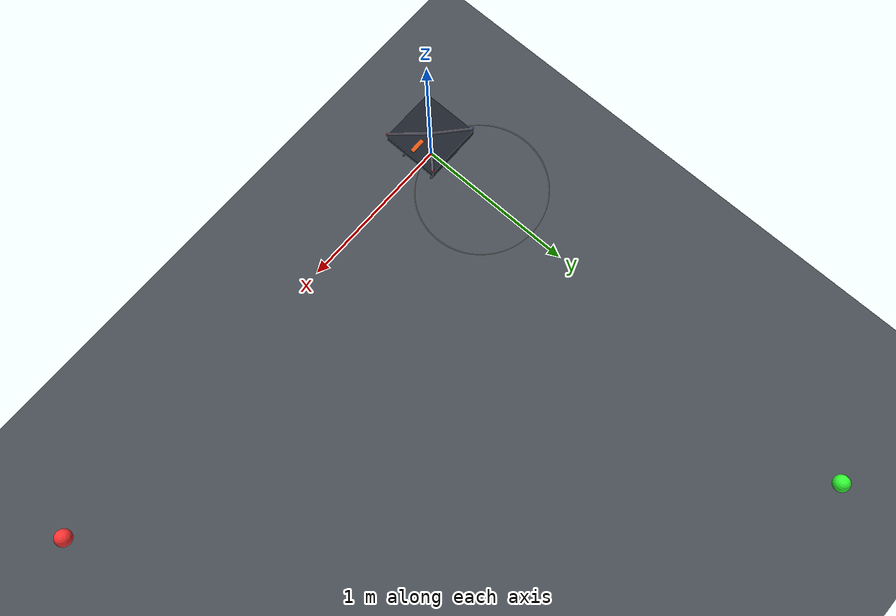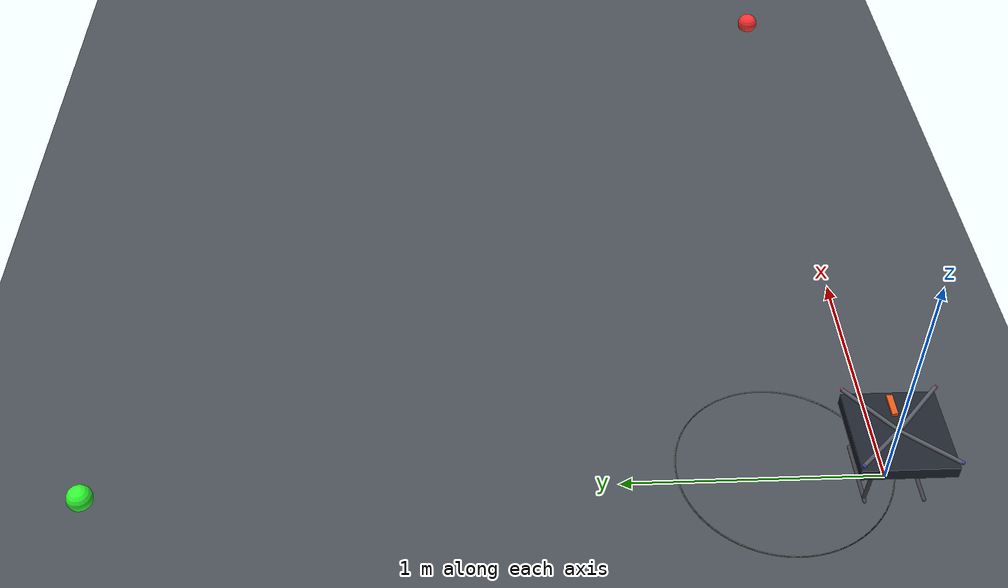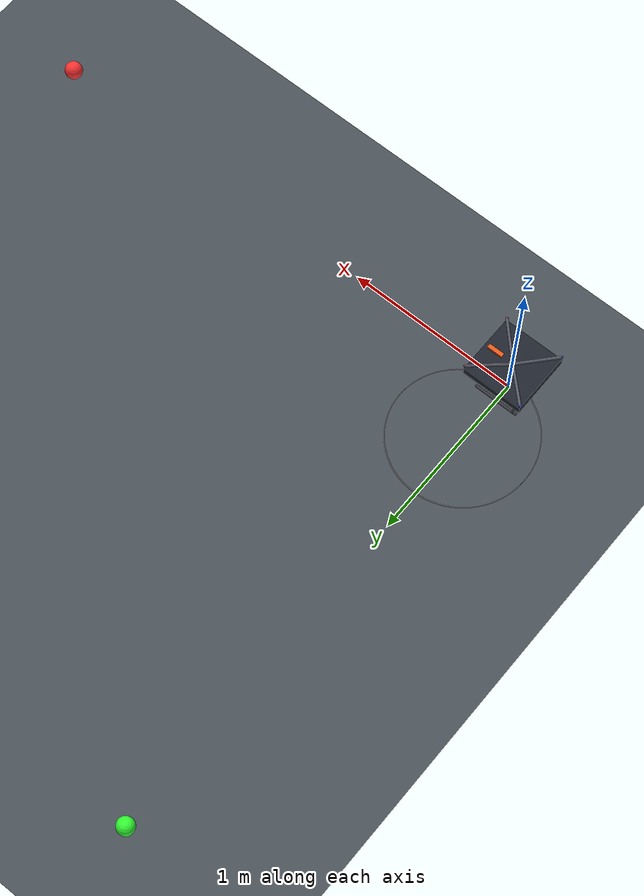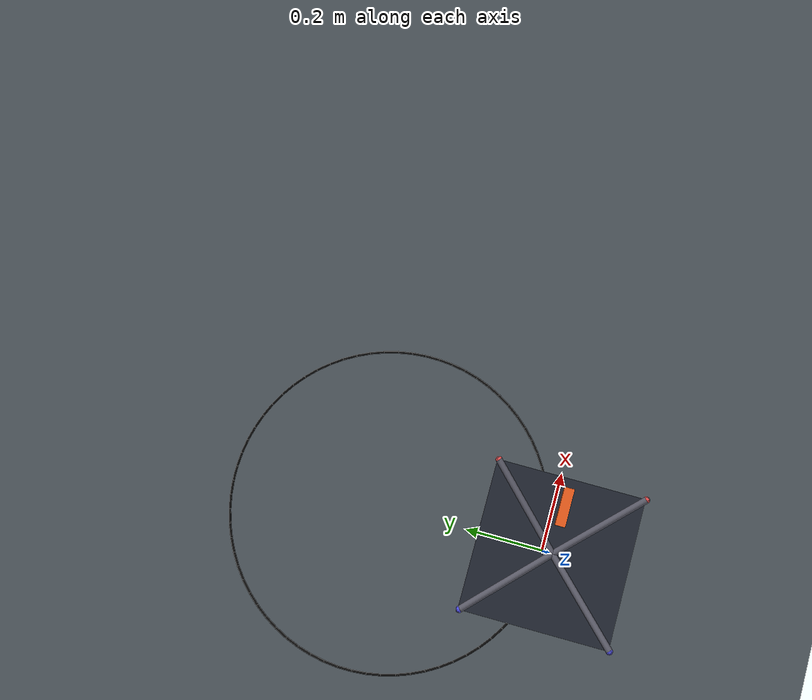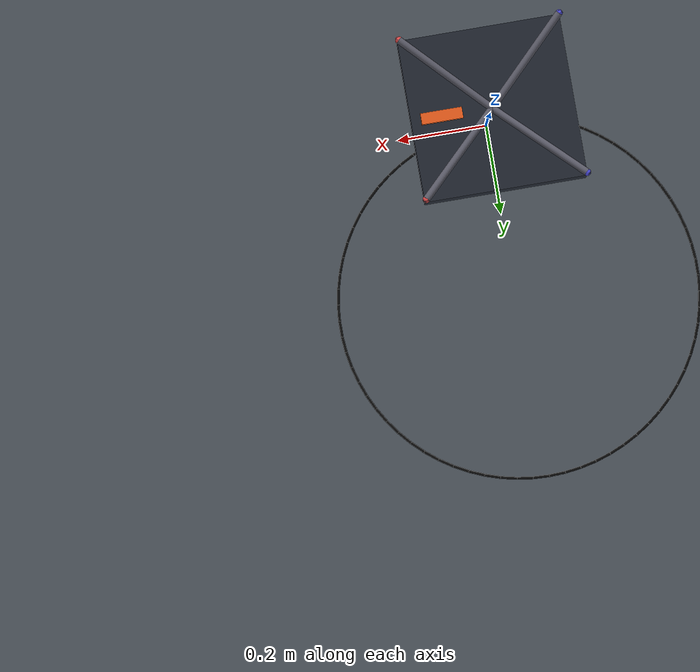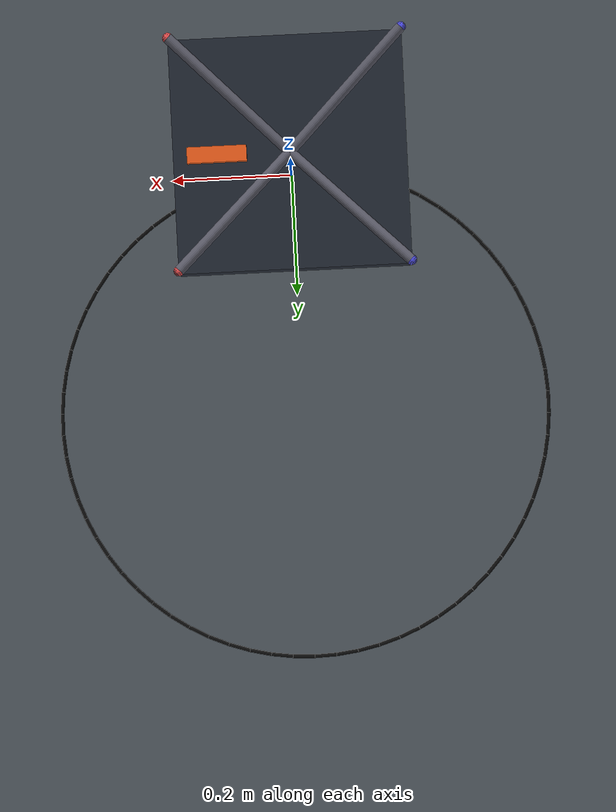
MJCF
<?xml version='1.0' encoding='utf-8'?>
<mujoco model="x500_tether_n70">
  <compiler angle="radian" coordinate="local" />
  <option timestep="0.001" gravity="0 0 -9.80665" integrator="RK4" density="1.2" viscosity="0" />
  <default>
    <geom contype="1" conaffinity="1" condim="3" friction="1.0 0.05 0.05" />
    <site type="sphere" size="0.008" rgba="1 0 0 1" />
  </default>
  <visual>
    <headlight ambient="0.4 0.4 0.4" />
    <global offwidth="1280" offheight="720" />
  </visual>
  <asset>
    <texture name="grid" type="2d" builtin="checker" rgb1="0.25 0.28 0.30" rgb2="0.32 0.35 0.38" width="512" height="512" />
    <material name="grid" texture="grid" texrepeat="12 12" reflectance="0.05" />
  </asset>
  <worldbody>
    <light pos="0 0 6" dir="0 0 -1" diffuse="0.8 0.8 0.8" />
    <geom name="floor" type="plane" size="60 60 0.1" material="grid" pos="0 0 0" />
    <site name="east_marker" pos="3 0 0.02" size="0.05" rgba="1 0.2 0.2 1" />
    <site name="north_marker" pos="0 3 0.02" size="0.05" rgba="0.2 1 0.2 1" />
    <body name="base_link" pos="0 0 0.24">
      <freejoint name="base_free" />
      <inertial pos="0 0 0.00186913" mass="2.0643076923076924" diaginertia="0.02383948 0.02394241 0.04399995" />
      <geom name="core" type="box" size="0.1767767 0.1767767 0.025" pos="0 0 0.007" density="0" rgba="0.12 0.14 0.18 1" />
      <geom name="nose" type="box" size="0.045 0.012 0.006" pos="0.11 0 0.04" density="0" contype="0" conaffinity="0" rgba="0.9 0.35 0.1 1" />
      <geom name="arm0" type="capsule" fromto="0 0 0.03 0.174 -0.174 0.06" size="0.008" density="0" rgba="0.35 0.35 0.4 1" />
      <geom name="arm1" type="capsule" fromto="0 0 0.03 -0.174 0.174 0.06" size="0.008" density="0" rgba="0.35 0.35 0.4 1" />
      <geom name="arm2" type="capsule" fromto="0 0 0.03 0.174 0.174 0.06" size="0.008" density="0" rgba="0.35 0.35 0.4 1" />
      <geom name="arm3" type="capsule" fromto="0 0 0.03 -0.174 -0.174 0.06" size="0.008" density="0" rgba="0.35 0.35 0.4 1" />
      <geom name="leg0" type="capsule" fromto="0.09 -0.09 -0.02 0.11 -0.11 -0.22" size="0.0075" density="0" rgba="0.25 0.25 0.28 1" />
      <geom name="leg1" type="capsule" fromto="-0.09 0.09 -0.02 -0.11 0.11 -0.22" size="0.0075" density="0" rgba="0.25 0.25 0.28 1" />
      <geom name="foot0" type="capsule" fromto="-0.125 -0.11 -0.22 0.125 -0.11 -0.22" size="0.0075" density="0" rgba="0.25 0.25 0.28 1" />
      <geom name="foot1" type="capsule" fromto="-0.125 0.11 -0.22 0.125 0.11 -0.22" size="0.0075" density="0" rgba="0.25 0.25 0.28 1" />
      <site name="imu" pos="0 0 0" quat="1 0 0 0" />
      <site name="rotor0" pos="0.174 -0.174 0.06" rgba="0.9 0.3 0.3 1" />
      <site name="rotor1" pos="-0.174 0.174 0.06" rgba="0.3 0.3 0.9 1" />
      <site name="rotor2" pos="0.174 0.174 0.06" rgba="0.9 0.3 0.3 1" />
      <site name="rotor3" pos="-0.174 -0.174 0.06" rgba="0.3 0.3 0.9 1" />
      <site name="tether_attach" pos="0 0 -0.12" size="0.012" rgba="0 0.8 0.2 1" />
    </body>
    <body name="tether_link_1" pos="0 0 0.01">
      <joint name="tether_joint_1" type="ball" damping="0.002" armature="1e-6" />
      <geom name="tether_geom_1" type="capsule" fromto="0 0 0 0.035643770455680408 0.0016007635769518598 0.0015714285714285708" size="0.0030000000000000001" mass="0.002142857142857143" contype="2" conaffinity="1" rgba="0.04 0.04 0.04 1" />
      <body name="tether_link_2" pos="0.035643770455680408 0.0016007635769518598 0.0015714285714285708">
        <joint name="tether_joint_2" type="ball" damping="0.002" armature="1e-6" />
        <geom name="tether_geom_2" type="capsule" fromto="0 0 0 0.035356787774168903 0.0047894023237677608 0.0015714285714285726" size="0.0030000000000000001" mass="0.002142857142857143" contype="2" conaffinity="1" rgba="0.04 0.04 0.04 1" />
        <body name="tether_link_3" pos="0.035356787774168903 0.0047894023237677608 0.0015714285714285726">
          <joint name="tether_joint_3" type="ball" damping="0.002" armature="1e-6" />
          <geom name="tether_geom_3" type="capsule" fromto="0 0 0 0.034785133026954324 0.007939479619195635 0.0015714285714285708" size="0.0030000000000000001" mass="0.002142857142857143" contype="2" conaffinity="1" rgba="0.04 0.04 0.04 1" />
          <body name="tether_link_4" pos="0.034785133026954324 0.007939479619195635 0.0015714285714285708">
            <joint name="tether_joint_4" type="ball" damping="0.002" armature="1e-6" />
            <geom name="tether_geom_4" type="capsule" fromto="0 0 0 0.033933408841933702 0.011025632893068103 0.0015714285714285708" size="0.0030000000000000001" mass="0.002142857142857143" contype="2" conaffinity="1" rgba="0.04 0.04 0.04 1" />
            <body name="tether_link_5" pos="0.033933408841933702 0.011025632893068103 0.0015714285714285708">
              <joint name="tether_joint_5" type="ball" damping="0.002" armature="1e-6" />
              <geom name="tether_geom_5" type="capsule" fromto="0 0 0 0.03280847280143917 0.014023014253852793 0.0015714285714285708" size="0.0030000000000000001" mass="0.002142857142857143" contype="2" conaffinity="1" rgba="0.04 0.04 0.04 1" />
              <body name="tether_link_6" pos="0.03280847280143917 0.014023014253852793 0.0015714285714285708">
                <joint name="tether_joint_6" type="ball" damping="0.002" armature="1e-6" />
                <geom name="tether_geom_6" type="capsule" fromto="0 0 0 0.031419382229016996 0.01690749054926434 0.0015714285714285708" size="0.0030000000000000001" mass="0.002142857142857143" contype="2" conaffinity="1" rgba="0.04 0.04 0.04 1" />
                <body name="tether_link_7" pos="0.031419382229016996 0.01690749054926434 0.0015714285714285708">
                  <joint name="tether_joint_7" type="ball" damping="0.002" armature="1e-6" />
                  <geom name="tether_geom_7" type="capsule" fromto="0 0 0 0.02977732126518437 0.019655837672216597 0.0015714285714285708" size="0.0030000000000000001" mass="0.002142857142857143" contype="2" conaffinity="1" rgba="0.04 0.04 0.04 1" />
                  <body name="tether_link_8" pos="0.02977732126518437 0.019655837672216597 0.0015714285714285708">
                    <joint name="tether_joint_8" type="ball" damping="0.002" armature="1e-6" />
                    <geom name="tether_geom_8" type="capsule" fromto="0 0 0 0.027895510819305858 0.022245927547677596 0.0015714285714285743" size="0.0030000000000000001" mass="0.002142857142857143" contype="2" conaffinity="1" rgba="0.04 0.04 0.04 1" />
                    <body name="tether_link_9" pos="0.027895510819305858 0.022245927547677596 0.0015714285714285743">
                      <joint name="tether_joint_9" type="ball" damping="0.002" armature="1e-6" />
                      <geom name="tether_geom_9" type="capsule" fromto="0 0 0 0.02578910212260499 0.024656906294918249 0.0015714285714285674" size="0.0030000000000000001" mass="0.002142857142857143" contype="2" conaffinity="1" rgba="0.04 0.04 0.04 1" />
                      <body name="tether_link_10" pos="0.02578910212260499 0.024656906294918249 0.0015714285714285674">
                        <joint name="tether_joint_10" type="ball" damping="0.002" armature="1e-6" />
                        <geom name="tether_geom_10" type="capsule" fromto="0 0 0 0.023475054739359513 0.026869362130698377 0.0015714285714285708" size="0.0030000000000000001" mass="0.002142857142857143" contype="2" conaffinity="1" rgba="0.04 0.04 0.04 1" />
                        <body name="tether_link_11" pos="0.023475054739359513 0.026869362130698377 0.0015714285714285708">
                          <joint name="tether_joint_11" type="ball" damping="0.002" armature="1e-6" />
                          <geom name="tether_geom_11" type="capsule" fromto="0 0 0 0.020972000018461223 0.028865481661531217 0.0015714285714285778" size="0.0030000000000000001" mass="0.002142857142857143" contype="2" conaffinity="1" rgba="0.04 0.04 0.04 1" />
                          <body name="tether_link_12" pos="0.020972000018461223 0.028865481661531217 0.0015714285714285778">
                            <joint name="tether_joint_12" type="ball" damping="0.002" armature="1e-6" />
                            <geom name="tether_geom_12" type="capsule" fromto="0 0 0 0.018300091084750725 0.030629193306653701 0.0015714285714285708" size="0.0030000000000000001" mass="0.002142857142857143" contype="2" conaffinity="1" rgba="0.04 0.04 0.04 1" />
                            <body name="tether_link_13" pos="0.018300091084750725 0.030629193306653701 0.0015714285714285708">
                              <joint name="tether_joint_13" type="ball" damping="0.002" armature="1e-6" />
                              <geom name="tether_geom_13" type="capsule" fromto="0 0 0 0.015480840577904997 0.03214629669694502 0.0015714285714285708" size="0.0030000000000000001" mass="0.002142857142857143" contype="2" conaffinity="1" rgba="0.04 0.04 0.04 1" />
                              <body name="tether_link_14" pos="0.015480840577904997 0.03214629669694502 0.0015714285714285708">
                                <joint name="tether_joint_14" type="ball" damping="0.002" armature="1e-6" />
                                <geom name="tether_geom_14" type="capsule" fromto="0 0 0 0.012536947445312918 0.033404577007948966 0.0015714285714285708" size="0.0030000000000000001" mass="0.002142857142857143" contype="2" conaffinity="1" rgba="0.04 0.04 0.04 1" />
                                <body name="tether_link_15" pos="0.012536947445312918 0.033404577007948966 0.0015714285714285708">
                                  <joint name="tether_joint_15" type="ball" damping="0.002" armature="1e-6" />
                                  <geom name="tether_geom_15" type="capsule" fromto="0 0 0 0.0094921141834969358 0.034393903306458085 0.0015714285714285708" size="0.0030000000000000001" mass="0.002142857142857143" contype="2" conaffinity="1" rgba="0.04 0.04 0.04 1" />
                                  <body name="tether_link_16" pos="0.0094921141834969358 0.034393903306458085 0.0015714285714285708">
                                    <joint name="tether_joint_16" type="ball" damping="0.002" armature="1e-6" />
                                    <geom name="tether_geom_16" type="capsule" fromto="0 0 0 0.006370855999548064 0.035106310118831252 0.0015714285714285708" size="0.0030000000000000001" mass="0.002142857142857143" contype="2" conaffinity="1" rgba="0.04 0.04 0.04 1" />
                                    <body name="tether_link_17" pos="0.006370855999548064 0.035106310118831252 0.0015714285714285708">
                                      <joint name="tether_joint_17" type="ball" damping="0.002" armature="1e-6" />
                                      <geom name="tether_geom_17" type="capsule" fromto="0 0 0 0.0031983034290935519 0.035536061564303612 0.0015714285714285708" size="0.0030000000000000001" mass="0.002142857142857143" contype="2" conaffinity="1" rgba="0.04 0.04 0.04 1" />
                                      <body name="tether_link_18" pos="0.0031983034290935519 0.035536061564303612 0.0015714285714285708">
                                        <joint name="tether_joint_18" type="ball" damping="0.002" armature="1e-6" />
                                        <geom name="tether_geom_18" type="capsule" fromto="0 0 0 5.5511151231257827e-17 0.035679697536926014 0.0015714285714285708" size="0.0030000000000000001" mass="0.002142857142857143" contype="2" conaffinity="1" rgba="0.04 0.04 0.04 1" />
                                        <body name="tether_link_19" pos="5.5511151231257827e-17 0.035679697536926014 0.0015714285714285708">
                                          <joint name="tether_joint_19" type="ball" damping="0.002" armature="1e-6" />
                                          <geom name="tether_geom_19" type="capsule" fromto="0 0 0 -0.0031983034290936074 0.035536061564303723 0.0015714285714285708" size="0.0030000000000000001" mass="0.002142857142857143" contype="2" conaffinity="1" rgba="0.04 0.04 0.04 1" />
                                          <body name="tether_link_20" pos="-0.0031983034290936074 0.035536061564303723 0.0015714285714285708">
                                            <joint name="tether_joint_20" type="ball" damping="0.002" armature="1e-6" />
                                            <geom name="tether_geom_20" type="capsule" fromto="0 0 0 -0.006370855999548064 0.035106310118831308 0.0015714285714285708" size="0.0030000000000000001" mass="0.002142857142857143" contype="2" conaffinity="1" rgba="0.04 0.04 0.04 1" />
                                            <body name="tether_link_21" pos="-0.006370855999548064 0.035106310118831308 0.0015714285714285708">
                                              <joint name="tether_joint_21" type="ball" damping="0.002" armature="1e-6" />
                                              <geom name="tether_geom_21" type="capsule" fromto="0 0 0 -0.0094921141834968803 0.034393903306458085 0.0015714285714285778" size="0.0030000000000000001" mass="0.002142857142857143" contype="2" conaffinity="1" rgba="0.04 0.04 0.04 1" />
                                              <body name="tether_link_22" pos="-0.0094921141834968803 0.034393903306458085 0.0015714285714285778">
                                                <joint name="tether_joint_22" type="ball" damping="0.002" armature="1e-6" />
                                                <geom name="tether_geom_22" type="capsule" fromto="0 0 0 -0.012536947445312974 0.033404577007948966 0.0015714285714285708" size="0.0030000000000000001" mass="0.002142857142857143" contype="2" conaffinity="1" rgba="0.04 0.04 0.04 1" />
                                                <body name="tether_link_23" pos="-0.012536947445312974 0.033404577007948966 0.0015714285714285708">
                                                  <joint name="tether_joint_23" type="ball" damping="0.002" armature="1e-6" />
                                                  <geom name="tether_geom_23" type="capsule" fromto="0 0 0 -0.015480840577904997 0.03214629669694502 0.0015714285714285708" size="0.0030000000000000001" mass="0.002142857142857143" contype="2" conaffinity="1" rgba="0.04 0.04 0.04 1" />
                                                  <body name="tether_link_24" pos="-0.015480840577904997 0.03214629669694502 0.0015714285714285708">
                                                    <joint name="tether_joint_24" type="ball" damping="0.002" armature="1e-6" />
                                                    <geom name="tether_geom_24" type="capsule" fromto="0 0 0 -0.018300091084750725 0.030629193306653812 0.0015714285714285708" size="0.0030000000000000001" mass="0.002142857142857143" contype="2" conaffinity="1" rgba="0.04 0.04 0.04 1" />
                                                    <body name="tether_link_25" pos="-0.018300091084750725 0.030629193306653812 0.0015714285714285708">
                                                      <joint name="tether_joint_25" type="ball" damping="0.002" armature="1e-6" />
                                                      <geom name="tether_geom_25" type="capsule" fromto="0 0 0 -0.020972000018461223 0.028865481661531023 0.0015714285714285708" size="0.0030000000000000001" mass="0.002142857142857143" contype="2" conaffinity="1" rgba="0.04 0.04 0.04 1" />
                                                      <body name="tether_link_26" pos="-0.020972000018461223 0.028865481661531023 0.0015714285714285708">
                                                        <joint name="tether_joint_26" type="ball" damping="0.002" armature="1e-6" />
                                                        <geom name="tether_geom_26" type="capsule" fromto="0 0 0 -0.023475054739359458 0.02686936213069846 0.0015714285714285708" size="0.0030000000000000001" mass="0.002142857142857143" contype="2" conaffinity="1" rgba="0.04 0.04 0.04 1" />
                                                        <body name="tether_link_27" pos="-0.023475054739359458 0.02686936213069846 0.0015714285714285708">
                                                          <joint name="tether_joint_27" type="ball" damping="0.002" armature="1e-6" />
                                                          <geom name="tether_geom_27" type="capsule" fromto="0 0 0 -0.025789102122604879 0.024656906294918124 0.0015714285714285708" size="0.0030000000000000001" mass="0.002142857142857143" contype="2" conaffinity="1" rgba="0.04 0.04 0.04 1" />
                                                          <body name="tether_link_28" pos="-0.025789102122604879 0.024656906294918124 0.0015714285714285708">
                                                            <joint name="tether_joint_28" type="ball" damping="0.002" armature="1e-6" />
                                                            <geom name="tether_geom_28" type="capsule" fromto="0 0 0 -0.027895510819305969 0.022245927547677735 0.0015714285714285708" size="0.0030000000000000001" mass="0.002142857142857143" contype="2" conaffinity="1" rgba="0.04 0.04 0.04 1" />
                                                            <body name="tether_link_29" pos="-0.027895510819305969 0.022245927547677735 0.0015714285714285708">
                                                              <joint name="tether_joint_29" type="ball" damping="0.002" armature="1e-6" />
                                                              <geom name="tether_geom_29" type="capsule" fromto="0 0 0 -0.029777321265184398 0.019655837672216681 0.0015714285714285708" size="0.0030000000000000001" mass="0.002142857142857143" contype="2" conaffinity="1" rgba="0.04 0.04 0.04 1" />
                                                              <body name="tether_link_30" pos="-0.029777321265184398 0.019655837672216681 0.0015714285714285708">
                                                                <joint name="tether_joint_30" type="ball" damping="0.002" armature="1e-6" />
                                                                <geom name="tether_geom_30" type="capsule" fromto="0 0 0 -0.031419382229016996 0.016907490549264215 0.0015714285714285708" size="0.0030000000000000001" mass="0.002142857142857143" contype="2" conaffinity="1" rgba="0.04 0.04 0.04 1" />
                                                                <body name="tether_link_31" pos="-0.031419382229016996 0.016907490549264215 0.0015714285714285708">
                                                                  <joint name="tether_joint_31" type="ball" damping="0.002" armature="1e-6" />
                                                                  <geom name="tether_geom_31" type="capsule" fromto="0 0 0 -0.032808472801439142 0.014023014253852883 0.0015714285714285708" size="0.0030000000000000001" mass="0.002142857142857143" contype="2" conaffinity="1" rgba="0.04 0.04 0.04 1" />
                                                                  <body name="tether_link_32" pos="-0.032808472801439142 0.014023014253852883 0.0015714285714285708">
                                                                    <joint name="tether_joint_32" type="ball" damping="0.002" armature="1e-6" />
                                                                    <geom name="tether_geom_32" type="capsule" fromto="0 0 0 -0.033933408841933715 0.011025632893068127 0.0015714285714285778" size="0.0030000000000000001" mass="0.002142857142857143" contype="2" conaffinity="1" rgba="0.04 0.04 0.04 1" />
                                                                    <body name="tether_link_33" pos="-0.033933408841933715 0.011025632893068127 0.0015714285714285778">
                                                                      <joint name="tether_joint_33" type="ball" damping="0.002" armature="1e-6" />
                                                                      <geom name="tether_geom_33" type="capsule" fromto="0 0 0 -0.034785133026954324 0.0079394796191956107 0.0015714285714285708" size="0.0030000000000000001" mass="0.002142857142857143" contype="2" conaffinity="1" rgba="0.04 0.04 0.04 1" />
                                                                      <body name="tether_link_34" pos="-0.034785133026954324 0.0079394796191956107 0.0015714285714285708">
                                                                        <joint name="tether_joint_34" type="ball" damping="0.002" armature="1e-6" />
                                                                        <geom name="tether_geom_34" type="capsule" fromto="0 0 0 -0.035356787774168896 0.0047894023237677885 0.0015714285714285708" size="0.0030000000000000001" mass="0.002142857142857143" contype="2" conaffinity="1" rgba="0.04 0.04 0.04 1" />
                                                                        <body name="tether_link_35" pos="-0.035356787774168896 0.0047894023237677885 0.0015714285714285708">
                                                                          <joint name="tether_joint_35" type="ball" damping="0.002" armature="1e-6" />
                                                                          <geom name="tether_geom_35" type="capsule" fromto="0 0 0 -0.035643770455680408 0.0016007635769518247 0.0015714285714285708" size="0.0030000000000000001" mass="0.002142857142857143" contype="2" conaffinity="1" rgba="0.04 0.04 0.04 1" />
                                                                          <body name="tether_link_36" pos="-0.035643770455680408 0.0016007635769518247 0.0015714285714285708">
                                                                            <joint name="tether_joint_36" type="ball" damping="0.002" armature="1e-6" />
                                                                            <geom name="tether_geom_36" type="capsule" fromto="0 0 0 -0.035643770455680228 -0.0016007635769518247 0.001571428571428557" size="0.0030000000000000001" mass="0.002142857142857143" contype="2" conaffinity="1" rgba="0.04 0.04 0.04 1" />
                                                                            <body name="tether_link_37" pos="-0.035643770455680228 -0.0016007635769518247 0.001571428571428557">
                                                                              <joint name="tether_joint_37" type="ball" damping="0.002" armature="1e-6" />
                                                                              <geom name="tether_geom_37" type="capsule" fromto="0 0 0 -0.035356787774169077 -0.0047894023237677885 0.0015714285714285847" size="0.0030000000000000001" mass="0.002142857142857143" contype="2" conaffinity="1" rgba="0.04 0.04 0.04 1" />
                                                                              <body name="tether_link_38" pos="-0.035356787774169077 -0.0047894023237677885 0.0015714285714285847">
                                                                                <joint name="tether_joint_38" type="ball" damping="0.002" armature="1e-6" />
                                                                                <geom name="tether_geom_38" type="capsule" fromto="0 0 0 -0.034785133026954157 -0.0079394796191954997 0.0015714285714285708" size="0.0030000000000000001" mass="0.002142857142857143" contype="2" conaffinity="1" rgba="0.04 0.04 0.04 1" />
                                                                                <body name="tether_link_39" pos="-0.034785133026954157 -0.0079394796191954997 0.0015714285714285708">
                                                                                  <joint name="tether_joint_39" type="ball" damping="0.002" armature="1e-6" />
                                                                                  <geom name="tether_geom_39" type="capsule" fromto="0 0 0 -0.033933408841933896 -0.011025632893068238 0.0015714285714285708" size="0.0030000000000000001" mass="0.002142857142857143" contype="2" conaffinity="1" rgba="0.04 0.04 0.04 1" />
                                                                                  <body name="tether_link_40" pos="-0.033933408841933896 -0.011025632893068238 0.0015714285714285708">
                                                                                    <joint name="tether_joint_40" type="ball" damping="0.002" armature="1e-6" />
                                                                                    <geom name="tether_geom_40" type="capsule" fromto="0 0 0 -0.032808472801439142 -0.014023014253852883 0.001571428571428557" size="0.0030000000000000001" mass="0.002142857142857143" contype="2" conaffinity="1" rgba="0.04 0.04 0.04 1" />
                                                                                    <body name="tether_link_41" pos="-0.032808472801439142 -0.014023014253852883 0.001571428571428557">
                                                                                      <joint name="tether_joint_41" type="ball" damping="0.002" armature="1e-6" />
                                                                                      <geom name="tether_geom_41" type="capsule" fromto="0 0 0 -0.031419382229016996 -0.016907490549264215 0.0015714285714285847" size="0.0030000000000000001" mass="0.002142857142857143" contype="2" conaffinity="1" rgba="0.04 0.04 0.04 1" />
                                                                                      <body name="tether_link_42" pos="-0.031419382229016996 -0.016907490549264215 0.0015714285714285847">
                                                                                        <joint name="tether_joint_42" type="ball" damping="0.002" armature="1e-6" />
                                                                                        <geom name="tether_geom_42" type="capsule" fromto="0 0 0 -0.02977732126518437 -0.019655837672216681 0.0015714285714285708" size="0.0030000000000000001" mass="0.002142857142857143" contype="2" conaffinity="1" rgba="0.04 0.04 0.04 1" />
                                                                                        <body name="tether_link_43" pos="-0.02977732126518437 -0.019655837672216681 0.0015714285714285708">
                                                                                          <joint name="tether_joint_43" type="ball" damping="0.002" armature="1e-6" />
                                                                                          <geom name="tether_geom_43" type="capsule" fromto="0 0 0 -0.027895510819305747 -0.022245927547677402 0.001571428571428557" size="0.0030000000000000001" mass="0.002142857142857143" contype="2" conaffinity="1" rgba="0.04 0.04 0.04 1" />
                                                                                          <body name="tether_link_44" pos="-0.027895510819305747 -0.022245927547677402 0.001571428571428557">
                                                                                            <joint name="tether_joint_44" type="ball" damping="0.002" armature="1e-6" />
                                                                                            <geom name="tether_geom_44" type="capsule" fromto="0 0 0 -0.025789102122605156 -0.024656906294918457 0.0015714285714285847" size="0.0030000000000000001" mass="0.002142857142857143" contype="2" conaffinity="1" rgba="0.04 0.04 0.04 1" />
                                                                                            <body name="tether_link_45" pos="-0.025789102122605156 -0.024656906294918457 0.0015714285714285847">
                                                                                              <joint name="tether_joint_45" type="ball" damping="0.002" armature="1e-6" />
                                                                                              <geom name="tether_geom_45" type="capsule" fromto="0 0 0 -0.023475054739359458 -0.026869362130698238 0.001571428571428557" size="0.0030000000000000001" mass="0.002142857142857143" contype="2" conaffinity="1" rgba="0.04 0.04 0.04 1" />
                                                                                              <body name="tether_link_46" pos="-0.023475054739359458 -0.026869362130698238 0.001571428571428557">
                                                                                                <joint name="tether_joint_46" type="ball" damping="0.002" armature="1e-6" />
                                                                                                <geom name="tether_geom_46" type="capsule" fromto="0 0 0 -0.020972000018461223 -0.028865481661531245 0.0015714285714285847" size="0.0030000000000000001" mass="0.002142857142857143" contype="2" conaffinity="1" rgba="0.04 0.04 0.04 1" />
                                                                                                <body name="tether_link_47" pos="-0.020972000018461223 -0.028865481661531245 0.0015714285714285847">
                                                                                                  <joint name="tether_joint_47" type="ball" damping="0.002" armature="1e-6" />
                                                                                                  <geom name="tether_geom_47" type="capsule" fromto="0 0 0 -0.018300091084750725 -0.030629193306653701 0.0015714285714285708" size="0.0030000000000000001" mass="0.002142857142857143" contype="2" conaffinity="1" rgba="0.04 0.04 0.04 1" />
                                                                                                  <body name="tether_link_48" pos="-0.018300091084750725 -0.030629193306653701 0.0015714285714285708">
                                                                                                    <joint name="tether_joint_48" type="ball" damping="0.002" armature="1e-6" />
                                                                                                    <geom name="tether_geom_48" type="capsule" fromto="0 0 0 -0.015480840577905053 -0.032146296696945131 0.0015714285714285708" size="0.0030000000000000001" mass="0.002142857142857143" contype="2" conaffinity="1" rgba="0.04 0.04 0.04 1" />
                                                                                                    <body name="tether_link_49" pos="-0.015480840577905053 -0.032146296696945131 0.0015714285714285708">
                                                                                                      <joint name="tether_joint_49" type="ball" damping="0.002" armature="1e-6" />
                                                                                                      <geom name="tether_geom_49" type="capsule" fromto="0 0 0 -0.012536947445312918 -0.033404577007948966 0.0015714285714285708" size="0.0030000000000000001" mass="0.002142857142857143" contype="2" conaffinity="1" rgba="0.04 0.04 0.04 1" />
                                                                                                      <body name="tether_link_50" pos="-0.012536947445312918 -0.033404577007948966 0.0015714285714285708">
                                                                                                        <joint name="tether_joint_50" type="ball" damping="0.002" armature="1e-6" />
                                                                                                        <geom name="tether_geom_50" type="capsule" fromto="0 0 0 -0.0094921141834969358 -0.034393903306457974 0.0015714285714285708" size="0.0030000000000000001" mass="0.002142857142857143" contype="2" conaffinity="1" rgba="0.04 0.04 0.04 1" />
                                                                                                        <body name="tether_link_51" pos="-0.0094921141834969358 -0.034393903306457974 0.0015714285714285708">
                                                                                                          <joint name="tether_joint_51" type="ball" damping="0.002" armature="1e-6" />
                                                                                                          <geom name="tether_geom_51" type="capsule" fromto="0 0 0 -0.006370855999548064 -0.035106310118831252 0.0015714285714285708" size="0.0030000000000000001" mass="0.002142857142857143" contype="2" conaffinity="1" rgba="0.04 0.04 0.04 1" />
                                                                                                          <body name="tether_link_52" pos="-0.006370855999548064 -0.035106310118831252 0.0015714285714285708">
                                                                                                            <joint name="tether_joint_52" type="ball" damping="0.002" armature="1e-6" />
                                                                                                            <geom name="tether_geom_52" type="capsule" fromto="0 0 0 -0.0031983034290935519 -0.035536061564303667 0.0015714285714285708" size="0.0030000000000000001" mass="0.002142857142857143" contype="2" conaffinity="1" rgba="0.04 0.04 0.04 1" />
                                                                                                            <body name="tether_link_53" pos="-0.0031983034290935519 -0.035536061564303667 0.0015714285714285708">
                                                                                                              <joint name="tether_joint_53" type="ball" damping="0.002" armature="1e-6" />
                                                                                                              <geom name="tether_geom_53" type="capsule" fromto="0 0 0 -5.5511151231257827e-17 -0.035679697536926069 0.0015714285714285708" size="0.0030000000000000001" mass="0.002142857142857143" contype="2" conaffinity="1" rgba="0.04 0.04 0.04 1" />
                                                                                                              <body name="tether_link_54" pos="-5.5511151231257827e-17 -0.035679697536926069 0.0015714285714285708">
                                                                                                                <joint name="tether_joint_54" type="ball" damping="0.002" armature="1e-6" />
                                                                                                                <geom name="tether_geom_54" type="capsule" fromto="0 0 0 0.0031983034290935519 -0.035536061564303334 0.0015714285714285708" size="0.0030000000000000001" mass="0.002142857142857143" contype="2" conaffinity="1" rgba="0.04 0.04 0.04 1" />
                                                                                                                <body name="tether_link_55" pos="0.0031983034290935519 -0.035536061564303334 0.0015714285714285708">
                                                                                                                  <joint name="tether_joint_55" type="ball" damping="0.002" armature="1e-6" />
                                                                                                                  <geom name="tether_geom_55" type="capsule" fromto="0 0 0 0.0063708559995481195 -0.035106310118831585 0.0015714285714285708" size="0.0030000000000000001" mass="0.002142857142857143" contype="2" conaffinity="1" rgba="0.04 0.04 0.04 1" />
                                                                                                                  <body name="tether_link_56" pos="0.0063708559995481195 -0.035106310118831585 0.0015714285714285708">
                                                                                                                    <joint name="tether_joint_56" type="ball" damping="0.002" armature="1e-6" />
                                                                                                                    <geom name="tether_geom_56" type="capsule" fromto="0 0 0 0.0094921141834968803 -0.034393903306458085 0.0015714285714285708" size="0.0030000000000000001" mass="0.002142857142857143" contype="2" conaffinity="1" rgba="0.04 0.04 0.04 1" />
                                                                                                                    <body name="tether_link_57" pos="0.0094921141834968803 -0.034393903306458085 0.0015714285714285708">
                                                                                                                      <joint name="tether_joint_57" type="ball" damping="0.002" armature="1e-6" />
                                                                                                                      <geom name="tether_geom_57" type="capsule" fromto="0 0 0 0.012536947445312974 -0.033404577007948993 0.0015714285714285708" size="0.0030000000000000001" mass="0.002142857142857143" contype="2" conaffinity="1" rgba="0.04 0.04 0.04 1" />
                                                                                                                      <body name="tether_link_58" pos="0.012536947445312974 -0.033404577007948993 0.0015714285714285708">
                                                                                                                        <joint name="tether_joint_58" type="ball" damping="0.002" armature="1e-6" />
                                                                                                                        <geom name="tether_geom_58" type="capsule" fromto="0 0 0 0.015480840577904997 -0.03214629669694502 0.0015714285714285708" size="0.0030000000000000001" mass="0.002142857142857143" contype="2" conaffinity="1" rgba="0.04 0.04 0.04 1" />
                                                                                                                        <body name="tether_link_59" pos="0.015480840577904997 -0.03214629669694502 0.0015714285714285708">
                                                                                                                          <joint name="tether_joint_59" type="ball" damping="0.002" armature="1e-6" />
                                                                                                                          <geom name="tether_geom_59" type="capsule" fromto="0 0 0 0.018300091084750669 -0.030629193306653701 0.0015714285714285847" size="0.0030000000000000001" mass="0.002142857142857143" contype="2" conaffinity="1" rgba="0.04 0.04 0.04 1" />
                                                                                                                          <body name="tether_link_60" pos="0.018300091084750669 -0.030629193306653701 0.0015714285714285847">
                                                                                                                            <joint name="tether_joint_60" type="ball" damping="0.002" armature="1e-6" />
                                                                                                                            <geom name="tether_geom_60" type="capsule" fromto="0 0 0 0.020972000018461279 -0.028865481661531217 0.001571428571428557" size="0.0030000000000000001" mass="0.002142857142857143" contype="2" conaffinity="1" rgba="0.04 0.04 0.04 1" />
                                                                                                                            <body name="tether_link_61" pos="0.020972000018461279 -0.028865481661531217 0.001571428571428557">
                                                                                                                              <joint name="tether_joint_61" type="ball" damping="0.002" armature="1e-6" />
                                                                                                                              <geom name="tether_geom_61" type="capsule" fromto="0 0 0 0.023475054739359402 -0.026869362130698363 0.0015714285714285847" size="0.0030000000000000001" mass="0.002142857142857143" contype="2" conaffinity="1" rgba="0.04 0.04 0.04 1" />
                                                                                                                              <body name="tether_link_62" pos="0.023475054739359402 -0.026869362130698363 0.0015714285714285847">
                                                                                                                                <joint name="tether_joint_62" type="ball" damping="0.002" armature="1e-6" />
                                                                                                                                <geom name="tether_geom_62" type="capsule" fromto="0 0 0 0.025789102122605045 -0.024656906294918249 0.001571428571428557" size="0.0030000000000000001" mass="0.002142857142857143" contype="2" conaffinity="1" rgba="0.04 0.04 0.04 1" />
                                                                                                                                <body name="tether_link_63" pos="0.025789102122605045 -0.024656906294918249 0.001571428571428557">
                                                                                                                                  <joint name="tether_joint_63" type="ball" damping="0.002" armature="1e-6" />
                                                                                                                                  <geom name="tether_geom_63" type="capsule" fromto="0 0 0 0.02789551081930583 -0.022245927547677652 0.0015714285714285847" size="0.0030000000000000001" mass="0.002142857142857143" contype="2" conaffinity="1" rgba="0.04 0.04 0.04 1" />
                                                                                                                                  <body name="tether_link_64" pos="0.02789551081930583 -0.022245927547677652 0.0015714285714285847">
                                                                                                                                    <joint name="tether_joint_64" type="ball" damping="0.002" armature="1e-6" />
                                                                                                                                    <geom name="tether_geom_64" type="capsule" fromto="0 0 0 0.02977732126518437 -0.019655837672216597 0.0015714285714285708" size="0.0030000000000000001" mass="0.002142857142857143" contype="2" conaffinity="1" rgba="0.04 0.04 0.04 1" />
                                                                                                                                    <body name="tether_link_65" pos="0.02977732126518437 -0.019655837672216597 0.0015714285714285708">
                                                                                                                                      <joint name="tether_joint_65" type="ball" damping="0.002" armature="1e-6" />
                                                                                                                                      <geom name="tether_geom_65" type="capsule" fromto="0 0 0 0.03141938222901669 -0.016907490549264159 0.001571428571428557" size="0.0030000000000000001" mass="0.002142857142857143" contype="2" conaffinity="1" rgba="0.04 0.04 0.04 1" />
                                                                                                                                      <body name="tether_link_66" pos="0.03141938222901669 -0.016907490549264159 0.001571428571428557">
                                                                                                                                        <joint name="tether_joint_66" type="ball" damping="0.002" armature="1e-6" />
                                                                                                                                        <geom name="tether_geom_66" type="capsule" fromto="0 0 0 0.032808472801439448 -0.01402301425385297 0.0015714285714285847" size="0.0030000000000000001" mass="0.002142857142857143" contype="2" conaffinity="1" rgba="0.04 0.04 0.04 1" />
                                                                                                                                        <body name="tether_link_67" pos="0.032808472801439448 -0.01402301425385297 0.0015714285714285847">
                                                                                                                                          <joint name="tether_joint_67" type="ball" damping="0.002" armature="1e-6" />
                                                                                                                                          <geom name="tether_geom_67" type="capsule" fromto="0 0 0 0.033933408841933715 -0.011025632893068148 0.001571428571428557" size="0.0030000000000000001" mass="0.002142857142857143" contype="2" conaffinity="1" rgba="0.04 0.04 0.04 1" />
                                                                                                                                          <body name="tether_link_68" pos="0.033933408841933715 -0.011025632893068148 0.001571428571428557">
                                                                                                                                            <joint name="tether_joint_68" type="ball" damping="0.002" armature="1e-6" />
                                                                                                                                            <geom name="tether_geom_68" type="capsule" fromto="0 0 0 0.034785133026954337 -0.007939479619195635 0.0015714285714285847" size="0.0030000000000000001" mass="0.002142857142857143" contype="2" conaffinity="1" rgba="0.04 0.04 0.04 1" />
                                                                                                                                            <body name="tether_link_69" pos="0.034785133026954337 -0.007939479619195635 0.0015714285714285847">
                                                                                                                                              <joint name="tether_joint_69" type="ball" damping="0.002" armature="1e-6" />
                                                                                                                                              <geom name="tether_geom_69" type="capsule" fromto="0 0 0 0.035356787774168889 -0.0047894023237677174 0.001571428571428557" size="0.0030000000000000001" mass="0.002142857142857143" contype="2" conaffinity="1" rgba="0.04 0.04 0.04 1" />
                                                                                                                                              <body name="tether_link_70" pos="0.035356787774168889 -0.0047894023237677174 0.001571428571428557">
                                                                                                                                                <joint name="tether_joint_70" type="ball" damping="0.002" armature="1e-6" />
                                                                                                                                                <geom name="tether_geom_70" type="capsule" fromto="0 0 0 0.035643770455680505 -0.0016007635769519041 0.0015714285714285847" size="0.0030000000000000001" mass="0.002142857142857143" contype="2" conaffinity="1" rgba="0.04 0.04 0.04 1" />
                                                                                                                                                <site name="tether_endpoint" pos="0.035643770455680505 -0.0016007635769519041 0.0015714285714285847" size="0.012" rgba="0 0.3 1 1" />
                                                                                                                                              </body>
                                                                                                                                            </body>
                                                                                                                                          </body>
                                                                                                                                        </body>
                                                                                                                                      </body>
                                                                                                                                    </body>
                                                                                                                                  </body>
                                                                                                                                </body>
                                                                                                                              </body>
                                                                                                                            </body>
                                                                                                                          </body>
                                                                                                                        </body>
                                                                                                                      </body>
                                                                                                                    </body>
                                                                                                                  </body>
                                                                                                                </body>
                                                                                                              </body>
                                                                                                            </body>
                                                                                                          </body>
                                                                                                        </body>
                                                                                                      </body>
                                                                                                    </body>
                                                                                                  </body>
                                                                                                </body>
                                                                                              </body>
                                                                                            </body>
                                                                                          </body>
                                                                                        </body>
                                                                                      </body>
                                                                                    </body>
                                                                                  </body>
                                                                                </body>
                                                                              </body>
                                                                            </body>
                                                                          </body>
                                                                        </body>
                                                                      </body>
                                                                    </body>
                                                                  </body>
                                                                </body>
                                                              </body>
                                                            </body>
                                                          </body>
                                                        </body>
                                                      </body>
                                                    </body>
                                                  </body>
                                                </body>
                                              </body>
                                            </body>
                                          </body>
                                        </body>
                                      </body>
                                    </body>
                                  </body>
                                </body>
                              </body>
                            </body>
                          </body>
                        </body>
                      </body>
                    </body>
                  </body>
                </body>
              </body>
            </body>
          </body>
        </body>
      </body>
    </body>
    <site name="tether_anchor" pos="0 0 0.01" size="0.015" rgba="1 0.1 0.1 1" />
  </worldbody>
  <sensor>
    <accelerometer name="imu_accel" site="imu" />
    <gyro name="imu_gyro" site="imu" />
  </sensor>
  <equality>
    <connect name="tether_uav_connection" body1="tether_link_70" body2="base_link" anchor="0.035643770455680505 -0.0016007635769519041 0.0015714285714285847" solref="0.01 1" solimp="0.95 0.99 0.001" />
  </equality>
</mujoco>
